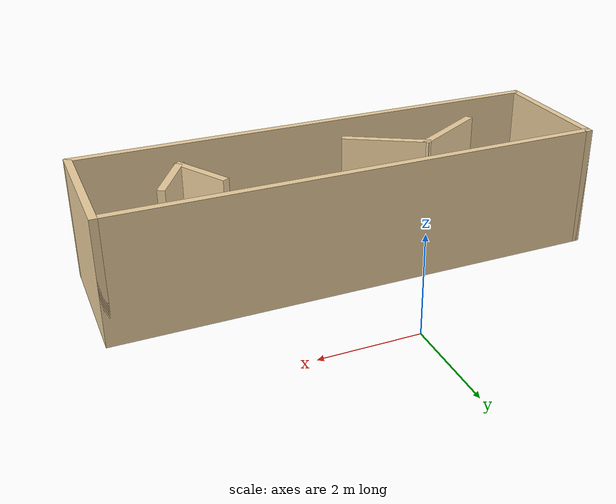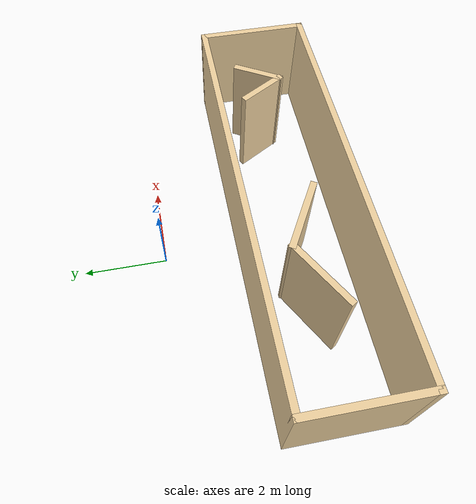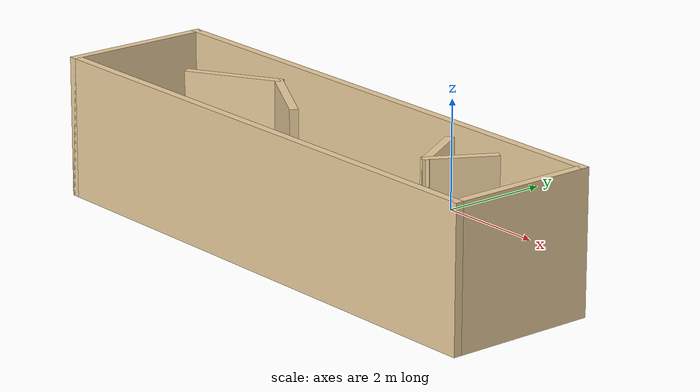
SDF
<?xml version='1.0'?>
<sdf version='1.6'>
  <model name='corridor1'>
    <pose frame=''>0.235 -3.17 0 0 -0 0</pose>
    <link name='Wall_10'>
      <collision name='Wall_10_Collision'>
        <geometry>
          <box>
            <size>1.75 0.15 2.5</size>
          </box>
        </geometry>
        <pose frame=''>0 0 1.25 0 -0 0</pose>
      </collision>
      <visual name='Wall_10_Visual'>
        <pose frame=''>0 0 1.25 0 -0 0</pose>
        <geometry>
          <box>
            <size>1.75 0.15 2.5</size>
          </box>
        </geometry>
        <material>
          <script>
            <uri>file://media/materials/scripts/gazebo.material</uri>
            <name>Gazebo/Grey</name>
          </script>
          <ambient>0.921569 0.807843 0.615686 1</ambient>
        </material>
        <meta>
          <layer>0</layer>
        </meta>
      </visual>
      <pose frame=''>-0.98218 0.14 0 0 -0 -0.523599</pose>
    </link>
    <link name='Wall_12'>
      <collision name='Wall_12_Collision'>
        <geometry>
          <box>
            <size>1.25 0.15 2.5</size>
          </box>
        </geometry>
        <pose frame=''>0 0 1.25 0 -0 0</pose>
      </collision>
      <visual name='Wall_12_Visual'>
        <pose frame=''>0 0 1.25 0 -0 0</pose>
        <geometry>
          <box>
            <size>1.25 0.15 2.5</size>
          </box>
        </geometry>
        <material>
          <script>
            <uri>file://media/materials/scripts/gazebo.material</uri>
            <name>Gazebo/Grey</name>
          </script>
          <ambient>0.921569 0.807843 0.615686 1</ambient>
        </material>
        <meta>
          <layer>0</layer>
        </meta>
      </visual>
      <pose frame=''>2.79 0.183686 0 0 -0 -1.0472</pose>
    </link>
    <link name='Wall_13'>
      <collision name='Wall_13_Collision'>
        <geometry>
          <box>
            <size>1.25 0.15 2.5</size>
          </box>
        </geometry>
        <pose frame=''>0 0 1.25 0 -0 0</pose>
      </collision>
      <visual name='Wall_13_Visual'>
        <pose frame=''>0 0 1.25 0 -0 0</pose>
        <geometry>
          <box>
            <size>1.25 0.15 2.5</size>
          </box>
        </geometry>
        <material>
          <script>
            <uri>file://media/materials/scripts/gazebo.material</uri>
            <name>Gazebo/Grey</name>
          </script>
          <ambient>0.921569 0.807843 0.615686 1</ambient>
        </material>
        <meta>
          <layer>0</layer>
        </meta>
      </visual>
      <pose frame=''>3.34 0.183686 0 0 -0 1.0472</pose>
    </link>
    <link name='Wall_2'>
      <collision name='Wall_2_Collision'>
        <geometry>
          <box>
            <size>10 0.15 2.5</size>
          </box>
        </geometry>
        <pose frame=''>0 0 1.25 0 -0 0</pose>
      </collision>
      <visual name='Wall_2_Visual'>
        <pose frame=''>0 0 1.25 0 -0 0</pose>
        <geometry>
          <box>
            <size>10 0.15 2.5</size>
          </box>
        </geometry>
        <material>
          <script>
            <uri>file://media/materials/scripts/gazebo.material</uri>
            <name>Gazebo/Grey</name>
          </script>
          <ambient>0.921569 0.807843 0.615686 1</ambient>
        </material>
        <meta>
          <layer>0</layer>
        </meta>
      </visual>
      <pose frame=''>0 -1.3 0 0 -0 0</pose>
    </link>
    <link name='Wall_4'>
      <collision name='Wall_4_Collision'>
        <geometry>
          <box>
            <size>2.75 0.15 2.5</size>
          </box>
        </geometry>
        <pose frame=''>0 0 1.25 0 -0 0</pose>
      </collision>
      <visual name='Wall_4_Visual'>
        <pose frame=''>0 0 1.25 0 -0 0</pose>
        <geometry>
          <box>
            <size>2.75 0.15 2.5</size>
          </box>
        </geometry>
        <material>
          <script>
            <uri>file://media/materials/scripts/gazebo.material</uri>
            <name>Gazebo/Grey</name>
          </script>
          <ambient>0.921569 0.807843 0.615686 1</ambient>
        </material>
        <meta>
          <layer>0</layer>
        </meta>
      </visual>
      <pose frame=''>-4.925 -0 0 0 -0 1.5708</pose>
    </link>
    <link name='Wall_5'>
      <collision name='Wall_5_Collision'>
        <geometry>
          <box>
            <size>10 0.15 2.5</size>
          </box>
        </geometry>
        <pose frame=''>0 0 1.25 0 -0 0</pose>
      </collision>
      <visual name='Wall_5_Visual'>
        <pose frame=''>0 0 1.25 0 -0 0</pose>
        <geometry>
          <box>
            <size>10 0.15 2.5</size>
          </box>
        </geometry>
        <material>
          <script>
            <uri>file://media/materials/scripts/gazebo.material</uri>
            <name>Gazebo/Grey</name>
          </script>
          <ambient>0.921569 0.807843 0.615686 1</ambient>
        </material>
        <meta>
          <layer>0</layer>
        </meta>
      </visual>
      <pose frame=''>0 1.3 0 0 -0 0</pose>
    </link>
    <link name='Wall_6'>
      <collision name='Wall_6_Collision'>
        <geometry>
          <box>
            <size>2.75 0.15 2.5</size>
          </box>
        </geometry>
        <pose frame=''>0 0 1.25 0 -0 0</pose>
      </collision>
      <visual name='Wall_6_Visual'>
        <pose frame=''>0 0 1.25 0 -0 0</pose>
        <geometry>
          <box>
            <size>2.75 0.15 2.5</size>
          </box>
        </geometry>
        <material>
          <script>
            <uri>file://media/materials/scripts/gazebo.material</uri>
            <name>Gazebo/Grey</name>
          </script>
          <ambient>0.921569 0.807843 0.615686 1</ambient>
        </material>
        <meta>
          <layer>0</layer>
        </meta>
      </visual>
      <pose frame=''>4.925 -0 0 0 -0 -1.5708</pose>
    </link>
    <link name='Wall_8'>
      <collision name='Wall_8_Collision'>
        <geometry>
          <box>
            <size>1.75 0.15 2.5</size>
          </box>
        </geometry>
        <pose frame=''>0 0 1.25 0 -0 0</pose>
      </collision>
      <visual name='Wall_8_Visual'>
        <pose frame=''>0 0 1.25 0 -0 0</pose>
        <geometry>
          <box>
            <size>1.75 0.15 2.5</size>
          </box>
        </geometry>
        <material>
          <script>
            <uri>file://media/materials/scripts/gazebo.material</uri>
            <name>Gazebo/Grey</name>
          </script>
          <ambient>0.921569 0.807843 0.615686 1</ambient>
        </material>
        <meta>
          <layer>0</layer>
        </meta>
      </visual>
      <pose frame=''>-2.36782 0.14 0 0 -0 -2.61799</pose>
    </link>
    <static>1</static>
  </model>
</sdf>
